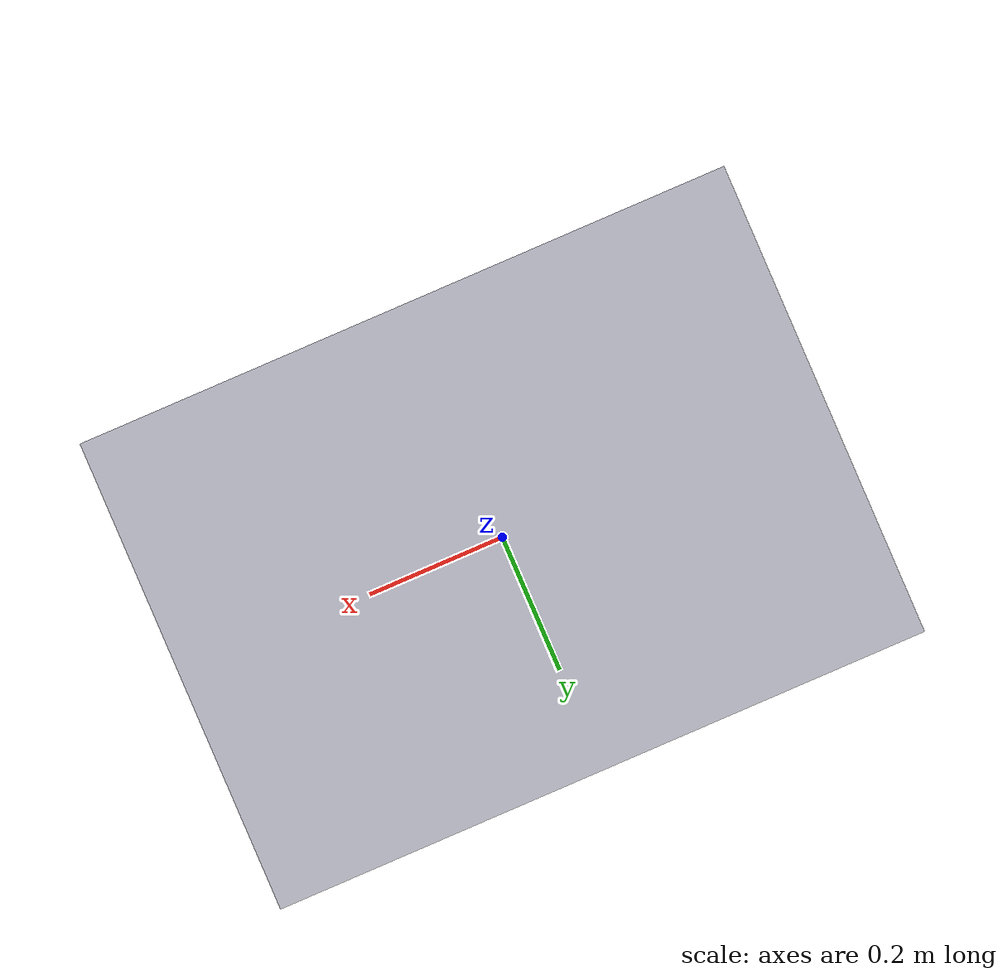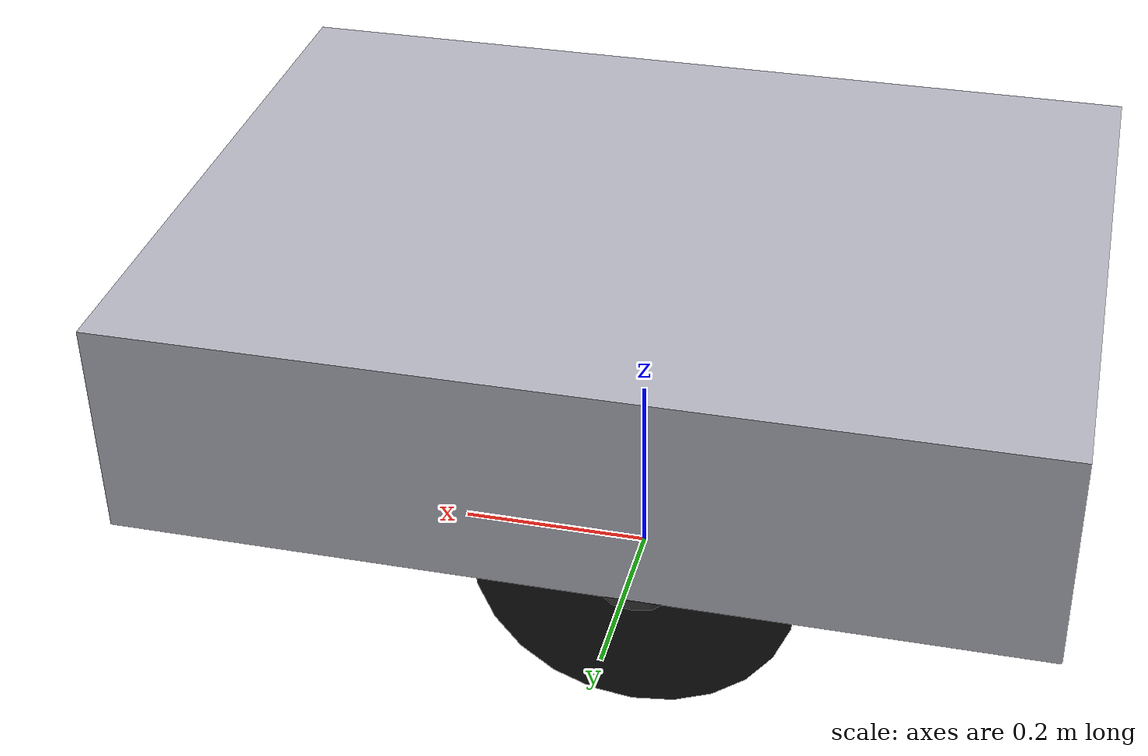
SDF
<?xml version="1.0"?>
<!-- Gazebo Harmonic diff-drive rover: wheels touch ground, body does not.
     Model origin Z = wheel contact plane. -->
<sdf version="1.9">
  <model name="lunar_rover">
    <link name="base_link">
      <!-- Chassis center above wheel axles (radius 0.18 + half-height 0.125) -->
      <pose>0 0 0.305 0 0 0</pose>
      <velocity_decay>
        <linear>0.35</linear>
        <angular>0.25</angular>
      </velocity_decay>
      <inertial>
        <mass>8.0</mass>
        <inertia>
          <ixx>0.35</ixx><iyy>0.55</iyy><izz>0.65</izz>
        </inertia>
      </inertial>
      <!-- Visual only on body — no chassis collision (stops scraping / bouncing) -->
      <visual name="body_vis">
        <geometry><box><size>0.9 0.65 0.22</size></box></geometry>
        <material>
          <ambient>0.7 0.7 0.75 1</ambient>
          <diffuse>0.75 0.75 0.8 1</diffuse>
        </material>
      </visual>
    </link>

    <link name="left_wheel">
      <pose>0 0 0 1.57079632679 0 0</pose>
      <velocity_decay>
        <linear>0.2</linear>
        <angular>0.1</angular>
      </velocity_decay>
      <inertial>
        <mass>0.8</mass>
        <inertia><ixx>0.01</ixx><iyy>0.01</iyy><izz>0.01</izz></inertia>
      </inertial>
      <collision name="col">
        <geometry><sphere><radius>0.18</radius></sphere></geometry>
        <surface>
          <friction><ode><mu>0.9</mu><mu2>0.9</mu2></ode></friction>
          <contact>
            <ode>
              <kp>100000</kp>
              <kd>500</kd>
              <max_vel>0.05</max_vel>
              <min_depth>0.002</min_depth>
            </ode>
          </contact>
        </surface>
      </collision>
      <visual name="vis">
        <geometry><cylinder><radius>0.18</radius><length>0.12</length></cylinder></geometry>
        <material><ambient>0.1 0.1 0.1 1</ambient></material>
      </visual>
    </link>

    <joint name="left_wheel_joint" type="revolute">
      <parent>base_link</parent>
      <child>left_wheel</child>
      <pose>0 0.42 -0.125 0 0 0</pose>
      <axis>
        <xyz expressed_in="__model__">0 1 0</xyz>
        <dynamics><damping>0.4</damping><friction>0.05</friction></dynamics>
        <limit><lower>-1e16</lower><upper>1e16</upper></limit>
      </axis>
    </joint>

    <link name="right_wheel">
      <pose>0 0 0 1.57079632679 0 0</pose>
      <velocity_decay>
        <linear>0.2</linear>
        <angular>0.1</angular>
      </velocity_decay>
      <inertial>
        <mass>0.8</mass>
        <inertia><ixx>0.01</ixx><iyy>0.01</iyy><izz>0.01</izz></inertia>
      </inertial>
      <collision name="col">
        <geometry><sphere><radius>0.18</radius></sphere></geometry>
        <surface>
          <friction><ode><mu>0.9</mu><mu2>0.9</mu2></ode></friction>
          <contact>
            <ode>
              <kp>100000</kp>
              <kd>500</kd>
              <max_vel>0.05</max_vel>
              <min_depth>0.002</min_depth>
            </ode>
          </contact>
        </surface>
      </collision>
      <visual name="vis">
        <geometry><cylinder><radius>0.18</radius><length>0.12</length></cylinder></geometry>
        <material><ambient>0.1 0.1 0.1 1</ambient></material>
      </visual>
    </link>

    <joint name="right_wheel_joint" type="revolute">
      <parent>base_link</parent>
      <child>right_wheel</child>
      <pose>0 -0.42 -0.125 0 0 0</pose>
      <axis>
        <xyz expressed_in="__model__">0 1 0</xyz>
        <dynamics><damping>0.4</damping><friction>0.05</friction></dynamics>
        <limit><lower>-1e16</lower><upper>1e16</upper></limit>
      </axis>
    </joint>

    <!-- Casters stop pitch rocking on uneven heightmap -->
    <link name="front_caster">
      <pose>0 0 0 0 0 0</pose>
      <inertial><mass>0.15</mass></inertial>
      <collision name="col">
        <geometry><sphere><radius>0.08</radius></sphere></geometry>
        <surface>
          <friction><ode><mu>0.05</mu><mu2>0.05</mu2></ode></friction>
          <contact>
            <ode><kp>50000</kp><kd>200</kd><max_vel>0.05</max_vel></ode>
          </contact>
        </surface>
      </collision>
      <visual name="vis">
        <geometry><sphere><radius>0.08</radius></sphere></geometry>
        <material><ambient>0.2 0.2 0.2 1</ambient></material>
      </visual>
    </link>

    <joint name="front_caster_joint" type="ball">
      <parent>base_link</parent>
      <child>front_caster</child>
      <pose>0.38 0 -0.225 0 0 0</pose>
    </joint>

    <link name="rear_caster">
      <pose>0 0 0 0 0 0</pose>
      <inertial><mass>0.15</mass></inertial>
      <collision name="col">
        <geometry><sphere><radius>0.08</radius></sphere></geometry>
        <surface>
          <friction><ode><mu>0.05</mu><mu2>0.05</mu2></ode></friction>
          <contact>
            <ode><kp>50000</kp><kd>200</kd><max_vel>0.05</max_vel></ode>
          </contact>
        </surface>
      </collision>
      <visual name="vis">
        <geometry><sphere><radius>0.08</radius></sphere></geometry>
        <material><ambient>0.2 0.2 0.2 1</ambient></material>
      </visual>
    </link>

    <joint name="rear_caster_joint" type="ball">
      <parent>base_link</parent>
      <child>rear_caster</child>
      <pose>-0.38 0 -0.225 0 0 0</pose>
    </joint>

    <plugin filename="gz-sim-diff-drive-system"
            name="gz::sim::systems::DiffDrive">
      <left_joint>left_wheel_joint</left_joint>
      <right_joint>right_wheel_joint</right_joint>
      <wheel_separation>0.84</wheel_separation>
      <wheel_radius>0.18</wheel_radius>
      <topic>cmd_vel</topic>
      <odom_topic>odometry</odom_topic>
      <tf_topic>tf</tf_topic>
      <frame_id>odom</frame_id>
      <child_frame_id>base_link</child_frame_id>
      <odom_publish_frequency>20</odom_publish_frequency>
      <max_linear_velocity>0.6</max_linear_velocity>
      <min_linear_velocity>-0.6</min_linear_velocity>
      <max_angular_velocity>1.2</max_angular_velocity>
      <min_angular_velocity>-1.2</min_angular_velocity>
      <max_linear_acceleration>0.35</max_linear_acceleration>
      <max_angular_acceleration>0.8</max_angular_acceleration>
    </plugin>

  </model>
</sdf>
